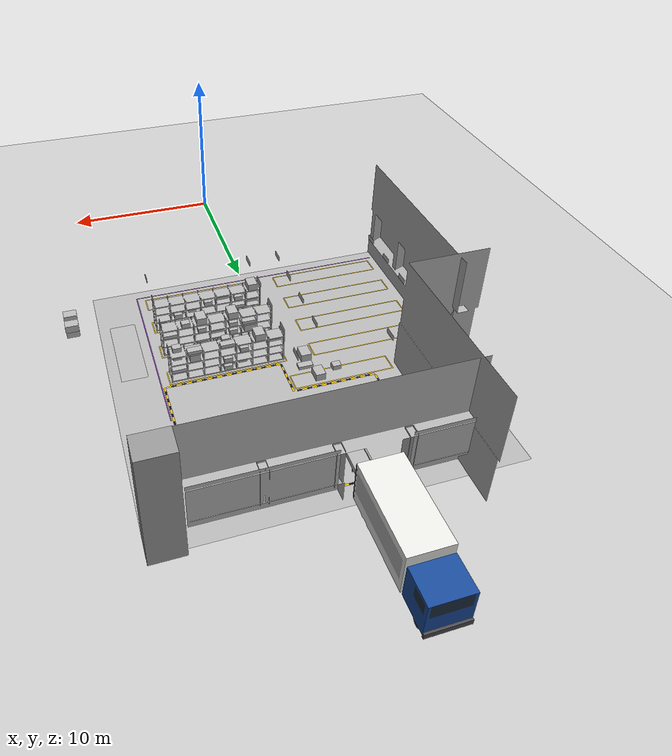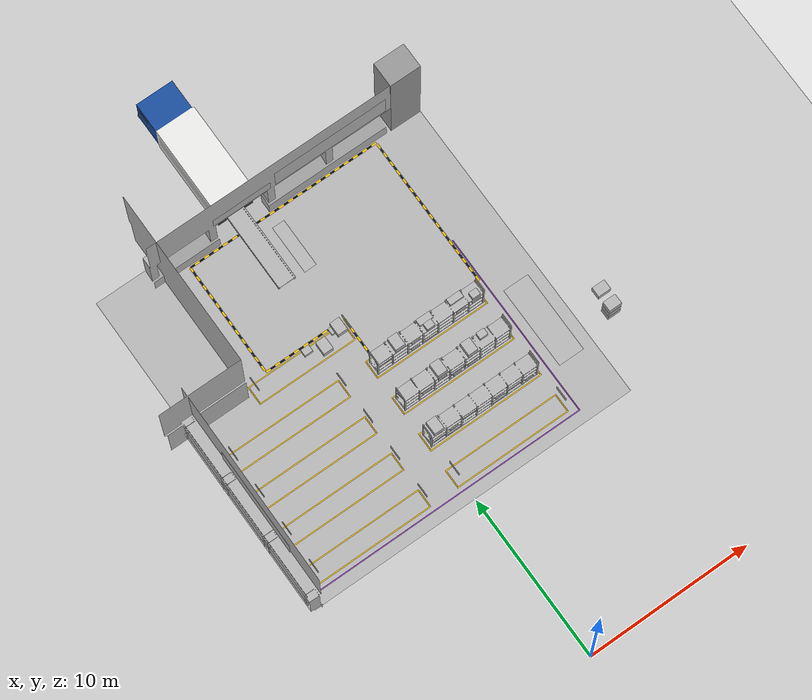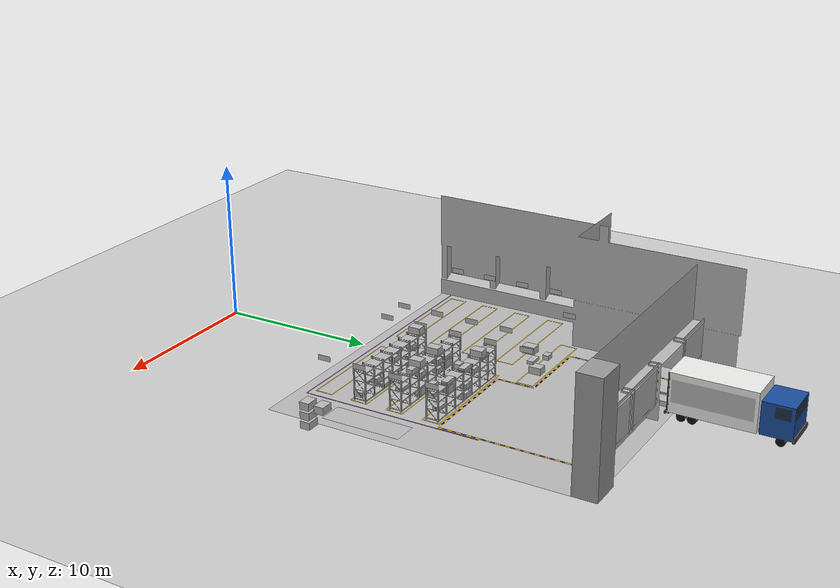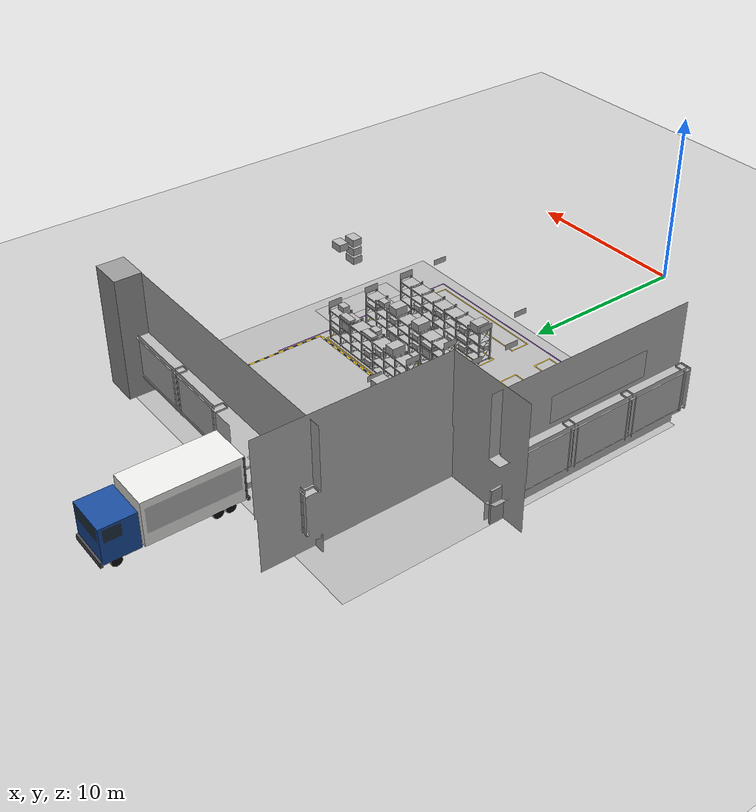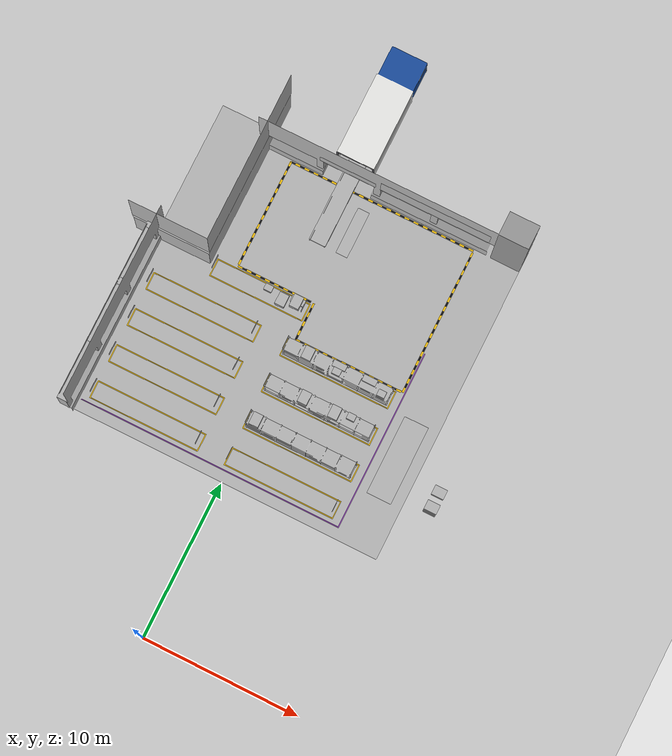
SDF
<sdf version="1.6">
 <world name="default">
  <model name="ground_plane">
   <static>1</static>
   <link name="link">
    <collision name="collision">
     <geometry><plane><normal>0 0 1</normal><size>100 100</size></plane></geometry>
     <surface><friction><ode><mu>100</mu><mu2>50</mu2></ode></friction></surface>
    </collision>
    <visual name="visual">
     <cast_shadows>0</cast_shadows>
     <geometry><plane><normal>0 0 1</normal><size>100 100</size></plane></geometry>
     <material>
      <script><uri>file://media/materials/scripts/gazebo.material</uri><name>Gazebo/Grey</name></script>
     </material>
    </visual>
   </link>
  </model>
  <model name="box_C_103">
   <pose>11.562 15.012 2.067 0 0 3.1416</pose>
   <link name="link">
    <inertial>
     <mass>8.0</mass>
     <inertia><ixx>0.37500</ixx><iyy>0.54060</iyy><izz>0.64560</izz><ixy>0</ixy><ixz>0</ixz><iyz>0</iyz></inertia>
    </inertial>
    <collision name="collision">
     <geometry><box><size>0.78 0.6 0.45</size></box></geometry>
     <surface><friction><ode><mu>1.0</mu><mu2>1.0</mu2></ode></friction></surface>
    </collision>
    <visual name="visual">
     <cast_shadows>0</cast_shadows>
     <geometry><box><size>0.78 0.6 0.45</size></box></geometry>
     <material>
      <script>
       <uri>model://labeled_boxes/materials/scripts</uri>
       <uri>model://labeled_boxes/materials/textures</uri>
       <name>LabeledBox/C-103</name>
      </script>
     </material>
    </visual>
   </link>
  </model>
  <model name="box_C_104">
   <pose>11.562 14.058 0.907 0 0 3.1416</pose>
   <link name="link">
    <inertial>
     <mass>8.0</mass>
     <inertia><ixx>0.37500</ixx><iyy>0.54060</iyy><izz>0.64560</izz><ixy>0</ixy><ixz>0</ixz><iyz>0</iyz></inertia>
    </inertial>
    <collision name="collision">
     <geometry><box><size>0.78 0.6 0.45</size></box></geometry>
     <surface><friction><ode><mu>1.0</mu><mu2>1.0</mu2></ode></friction></surface>
    </collision>
    <visual name="visual">
     <cast_shadows>0</cast_shadows>
     <geometry><box><size>0.78 0.6 0.45</size></box></geometry>
     <material>
      <script>
       <uri>model://labeled_boxes/materials/scripts</uri>
       <uri>model://labeled_boxes/materials/textures</uri>
       <name>LabeledBox/C-104</name>
      </script>
     </material>
    </visual>
   </link>
  </model>
  <model name="box_C_105">
   <pose>11.562 14.058 1.487 0 0 3.1416</pose>
   <link name="link">
    <inertial>
     <mass>8.0</mass>
     <inertia><ixx>0.37500</ixx><iyy>0.54060</iyy><izz>0.64560</izz><ixy>0</ixy><ixz>0</ixz><iyz>0</iyz></inertia>
    </inertial>
    <collision name="collision">
     <geometry><box><size>0.78 0.6 0.45</size></box></geometry>
     <surface><friction><ode><mu>1.0</mu><mu2>1.0</mu2></ode></friction></surface>
    </collision>
    <visual name="visual">
     <cast_shadows>0</cast_shadows>
     <geometry><box><size>0.78 0.6 0.45</size></box></geometry>
     <material>
      <script>
       <uri>model://labeled_boxes/materials/scripts</uri>
       <uri>model://labeled_boxes/materials/textures</uri>
       <name>LabeledBox/C-105</name>
      </script>
     </material>
    </visual>
   </link>
  </model>
  <model name="box_C_106">
   <pose>11.562 14.058 2.067 0 0 3.1416</pose>
   <link name="link">
    <inertial>
     <mass>8.0</mass>
     <inertia><ixx>0.37500</ixx><iyy>0.54060</iyy><izz>0.64560</izz><ixy>0</ixy><ixz>0</ixz><iyz>0</iyz></inertia>
    </inertial>
    <collision name="collision">
     <geometry><box><size>0.78 0.6 0.45</size></box></geometry>
     <surface><friction><ode><mu>1.0</mu><mu2>1.0</mu2></ode></friction></surface>
    </collision>
    <visual name="visual">
     <cast_shadows>0</cast_shadows>
     <geometry><box><size>0.78 0.6 0.45</size></box></geometry>
     <material>
      <script>
       <uri>model://labeled_boxes/materials/scripts</uri>
       <uri>model://labeled_boxes/materials/textures</uri>
       <name>LabeledBox/C-106</name>
      </script>
     </material>
    </visual>
   </link>
  </model>
  <include>
   <name>zone_D_layout</name>
   <uri>model://zone_d_layout</uri>
   <pose>-0.040107 20.155 0 0 0 -1.5708</pose>
  </include>
  <model name="box_D_006">
   <pose>-2.6568 21.46 0.832 0 0 -1.5708</pose>
   <link name="link">
    <inertial>
     <mass>2.0</mass>
     <inertia><ixx>0.05667</ixx><iyy>0.04167</iyy><izz>0.06833</izz><ixy>0</ixy><ixz>0</ixz><iyz>0</iyz></inertia>
    </inertial>
    <collision name="collision">
     <geometry><box><size>0.4 0.5 0.3</size></box></geometry>
     <surface><friction><ode><mu>1.0</mu><mu2>1.0</mu2></ode></friction></surface>
    </collision>
    <visual name="visual">
     <cast_shadows>0</cast_shadows>
     <geometry><box><size>0.4 0.5 0.3</size></box></geometry>
     <material>
      <script>
       <uri>model://labeled_boxes/materials/scripts</uri>
       <uri>model://labeled_boxes/materials/textures</uri>
       <name>LabeledBox/D-006</name>
      </script>
     </material>
    </visual>
   </link>
  </model>
  <model name="box_D_008">
   <pose>-1.6901 21.255 0.327 0 0 -1.5708</pose>
   <link name="link">
    <inertial>
     <mass>8.0</mass>
     <inertia><ixx>0.37500</ixx><iyy>0.54060</iyy><izz>0.64560</izz><ixy>0</ixy><ixz>0</ixz><iyz>0</iyz></inertia>
    </inertial>
    <collision name="collision">
     <geometry><box><size>0.78 0.6 0.45</size></box></geometry>
     <surface><friction><ode><mu>1.0</mu><mu2>1.0</mu2></ode></friction></surface>
    </collision>
    <visual name="visual">
     <cast_shadows>0</cast_shadows>
     <geometry><box><size>0.78 0.6 0.45</size></box></geometry>
     <material>
      <script>
       <uri>model://labeled_boxes/materials/scripts</uri>
       <uri>model://labeled_boxes/materials/textures</uri>
       <name>LabeledBox/D-008</name>
      </script>
     </material>
    </visual>
   </link>
  </model>
  <model name="box_D_009">
   <pose>-0.74094 21.46 1.362 0 0 -1.5708</pose>
   <link name="link">
    <inertial>
     <mass>4.0</mass>
     <inertia><ixx>0.25417</ixx><iyy>0.06667</iyy><izz>0.29417</izz><ixy>0</ixy><ixz>0</ixz><iyz>0</iyz></inertia>
    </inertial>
    <collision name="collision">
     <geometry><box><size>0.4 0.85 0.2</size></box></geometry>
     <surface><friction><ode><mu>1.0</mu><mu2>1.0</mu2></ode></friction></surface>
    </collision>
    <visual name="visual">
     <cast_shadows>0</cast_shadows>
     <geometry><box><size>0.4 0.85 0.2</size></box></geometry>
     <material>
      <script>
       <uri>model://labeled_boxes/materials/scripts</uri>
       <uri>model://labeled_boxes/materials/textures</uri>
       <name>LabeledBox/D-009</name>
      </script>
     </material>
    </visual>
   </link>
  </model>
  <model name="box_D_010">
   <pose>-0.74094 21.255 2.067 0 0 -1.5708</pose>
   <link name="link">
    <inertial>
     <mass>8.0</mass>
     <inertia><ixx>0.37500</ixx><iyy>0.54060</iyy><izz>0.64560</izz><ixy>0</ixy><ixz>0</ixz><iyz>0</iyz></inertia>
    </inertial>
    <collision name="collision">
     <geometry><box><size>0.78 0.6 0.45</size></box></geometry>
     <surface><friction><ode><mu>1.0</mu><mu2>1.0</mu2></ode></friction></surface>
    </collision>
    <visual name="visual">
     <cast_shadows>0</cast_shadows>
     <geometry><box><size>0.78 0.6 0.45</size></box></geometry>
     <material>
      <script>
       <uri>model://labeled_boxes/materials/scripts</uri>
       <uri>model://labeled_boxes/materials/textures</uri>
       <name>LabeledBox/D-010</name>
      </script>
     </material>
    </visual>
   </link>
  </model>
  <include>
   <name>rack_D2_1</name>
   <uri>model://warehouse_rack_4lvl_7bay</uri>
   <pose>3.1599 18.855 0 0 0 -1.5708</pose>
  </include>
  <model name="box_D_031">
   <pose>0.26311 18.65 1.362 0 0 -1.5708</pose>
   <link name="link">
    <inertial>
     <mass>4.0</mass>
     <inertia><ixx>0.25417</ixx><iyy>0.06667</iyy><izz>0.29417</izz><ixy>0</ixy><ixz>0</ixz><iyz>0</iyz></inertia>
    </inertial>
    <collision name="collision">
     <geometry><box><size>0.4 0.85 0.2</size></box></geometry>
     <surface><friction><ode><mu>1.0</mu><mu2>1.0</mu2></ode></friction></surface>
    </collision>
    <visual name="visual">
     <cast_shadows>0</cast_shadows>
     <geometry><box><size>0.4 0.85 0.2</size></box></geometry>
     <material>
      <script>
       <uri>model://labeled_boxes/materials/scripts</uri>
       <uri>model://labeled_boxes/materials/textures</uri>
       <name>LabeledBox/D-031</name>
      </script>
     </material>
    </visual>
   </link>
  </model>
  <model name="box_D_032">
   <pose>1.217 18.855 2.067 0 0 -1.5708</pose>
   <link name="link">
    <inertial>
     <mass>8.0</mass>
     <inertia><ixx>0.37500</ixx><iyy>0.54060</iyy><izz>0.64560</izz><ixy>0</ixy><ixz>0</ixz><iyz>0</iyz></inertia>
    </inertial>
    <collision name="collision">
     <geometry><box><size>0.78 0.6 0.45</size></box></geometry>
     <surface><friction><ode><mu>1.0</mu><mu2>1.0</mu2></ode></friction></surface>
    </collision>
    <visual name="visual">
     <cast_shadows>0</cast_shadows>
     <geometry><box><size>0.78 0.6 0.45</size></box></geometry>
     <material>
      <script>
       <uri>model://labeled_boxes/materials/scripts</uri>
       <uri>model://labeled_boxes/materials/textures</uri>
       <name>LabeledBox/D-032</name>
      </script>
     </material>
    </visual>
   </link>
  </model>
  <model name="box_D_033">
   <pose>2.1885 18.65 0.252 0 0 -1.5708</pose>
   <link name="link">
    <inertial>
     <mass>2.0</mass>
     <inertia><ixx>0.05667</ixx><iyy>0.04167</iyy><izz>0.06833</izz><ixy>0</ixy><ixz>0</ixz><iyz>0</iyz></inertia>
    </inertial>
    <collision name="collision">
     <geometry><box><size>0.4 0.5 0.3</size></box></geometry>
     <surface><friction><ode><mu>1.0</mu><mu2>1.0</mu2></ode></friction></surface>
    </collision>
    <visual name="visual">
     <cast_shadows>0</cast_shadows>
     <geometry><box><size>0.4 0.5 0.3</size></box></geometry>
     <material>
      <script>
       <uri>model://labeled_boxes/materials/scripts</uri>
       <uri>model://labeled_boxes/materials/textures</uri>
       <name>LabeledBox/D-033</name>
      </script>
     </material>
    </visual>
   </link>
  </model>
  <model name="box_D_034">
   <pose>2.1885 19.06 1.412 0 0 -1.5708</pose>
   <link name="link">
    <inertial>
     <mass>2.0</mass>
     <inertia><ixx>0.05667</ixx><iyy>0.04167</iyy><izz>0.06833</izz><ixy>0</ixy><ixz>0</ixz><iyz>0</iyz></inertia>
    </inertial>
    <collision name="collision">
     <geometry><box><size>0.4 0.5 0.3</size></box></geometry>
     <surface><friction><ode><mu>1.0</mu><mu2>1.0</mu2></ode></friction></surface>
    </collision>
    <visual name="visual">
     <cast_shadows>0</cast_shadows>
     <geometry><box><size>0.4 0.5 0.3</size></box></geometry>
     <material>
      <script>
       <uri>model://labeled_boxes/materials/scripts</uri>
       <uri>model://labeled_boxes/materials/textures</uri>
       <name>LabeledBox/D-034</name>
      </script>
     </material>
    </visual>
   </link>
  </model>
  <model name="box_D_035">
   <pose>2.1885 18.65 1.412 0 0 -1.5708</pose>
   <link name="link">
    <inertial>
     <mass>2.0</mass>
     <inertia><ixx>0.05667</ixx><iyy>0.04167</iyy><izz>0.06833</izz><ixy>0</ixy><ixz>0</ixz><iyz>0</iyz></inertia>
    </inertial>
    <collision name="collision">
     <geometry><box><size>0.4 0.5 0.3</size></box></geometry>
     <surface><friction><ode><mu>1.0</mu><mu2>1.0</mu2></ode></friction></surface>
    </collision>
    <visual name="visual">
     <cast_shadows>0</cast_shadows>
     <geometry><box><size>0.4 0.5 0.3</size></box></geometry>
     <material>
      <script>
       <uri>model://labeled_boxes/materials/scripts</uri>
       <uri>model://labeled_boxes/materials/textures</uri>
       <name>LabeledBox/D-035</name>
      </script>
     </material>
    </visual>
   </link>
  </model>
  <model name="box_D_036">
   <pose>3.1599 19.06 0.252 0 0 -1.5708</pose>
   <link name="link">
    <inertial>
     <mass>2.0</mass>
     <inertia><ixx>0.05667</ixx><iyy>0.04167</iyy><izz>0.06833</izz><ixy>0</ixy><ixz>0</ixz><iyz>0</iyz></inertia>
    </inertial>
    <collision name="collision">
     <geometry><box><size>0.4 0.5 0.3</size></box></geometry>
     <surface><friction><ode><mu>1.0</mu><mu2>1.0</mu2></ode></friction></surface>
    </collision>
    <visual name="visual">
     <cast_shadows>0</cast_shadows>
     <geometry><box><size>0.4 0.5 0.3</size></box></geometry>
     <material>
      <script>
       <uri>model://labeled_boxes/materials/scripts</uri>
       <uri>model://labeled_boxes/materials/textures</uri>
       <name>LabeledBox/D-036</name>
      </script>
     </material>
    </visual>
   </link>
  </model>
  <model name="box_D_037">
   <pose>3.1599 18.65 0.202 0 0 -1.5708</pose>
   <link name="link">
    <inertial>
     <mass>4.0</mass>
     <inertia><ixx>0.25417</ixx><iyy>0.06667</iyy><izz>0.29417</izz><ixy>0</ixy><ixz>0</ixz><iyz>0</iyz></inertia>
    </inertial>
    <collision name="collision">
     <geometry><box><size>0.4 0.85 0.2</size></box></geometry>
     <surface><friction><ode><mu>1.0</mu><mu2>1.0</mu2></ode></friction></surface>
    </collision>
    <visual name="visual">
     <cast_shadows>0</cast_shadows>
     <geometry><box><size>0.4 0.85 0.2</size></box></geometry>
     <material>
      <script>
       <uri>model://labeled_boxes/materials/scripts</uri>
       <uri>model://labeled_boxes/materials/textures</uri>
       <name>LabeledBox/D-037</name>
      </script>
     </material>
    </visual>
   </link>
  </model>
  <model name="box_D_038">
   <pose>3.1599 19.06 0.832 0 0 -1.5708</pose>
   <link name="link">
    <inertial>
     <mass>2.0</mass>
     <inertia><ixx>0.05667</ixx><iyy>0.04167</iyy><izz>0.06833</izz><ixy>0</ixy><ixz>0</ixz><iyz>0</iyz></inertia>
    </inertial>
    <collision name="collision">
     <geometry><box><size>0.4 0.5 0.3</size></box></geometry>
     <surface><friction><ode><mu>1.0</mu><mu2>1.0</mu2></ode></friction></surface>
    </collision>
    <visual name="visual">
     <cast_shadows>0</cast_shadows>
     <geometry><box><size>0.4 0.5 0.3</size></box></geometry>
     <material>
      <script>
       <uri>model://labeled_boxes/materials/scripts</uri>
       <uri>model://labeled_boxes/materials/textures</uri>
       <name>LabeledBox/D-038</name>
      </script>
     </material>
    </visual>
   </link>
  </model>
  <model name="box_D_039">
   <pose>3.1599 19.06 1.942 0 0 -1.5708</pose>
   <link name="link">
    <inertial>
     <mass>4.0</mass>
     <inertia><ixx>0.25417</ixx><iyy>0.06667</iyy><izz>0.29417</izz><ixy>0</ixy><ixz>0</ixz><iyz>0</iyz></inertia>
    </inertial>
    <collision name="collision">
     <geometry><box><size>0.4 0.85 0.2</size></box></geometry>
     <surface><friction><ode><mu>1.0</mu><mu2>1.0</mu2></ode></friction></surface>
    </collision>
    <visual name="visual">
     <cast_shadows>0</cast_shadows>
     <geometry><box><size>0.4 0.85 0.2</size></box></geometry>
     <material>
      <script>
       <uri>model://labeled_boxes/materials/scripts</uri>
       <uri>model://labeled_boxes/materials/textures</uri>
       <name>LabeledBox/D-039</name>
      </script>
     </material>
    </visual>
   </link>
  </model>
  <model name="box_D_040">
   <pose>3.1599 18.65 1.992 0 0 -1.5708</pose>
   <link name="link">
    <inertial>
     <mass>2.0</mass>
     <inertia><ixx>0.05667</ixx><iyy>0.04167</iyy><izz>0.06833</izz><ixy>0</ixy><ixz>0</ixz><iyz>0</iyz></inertia>
    </inertial>
    <collision name="collision">
     <geometry><box><size>0.4 0.5 0.3</size></box></geometry>
     <surface><friction><ode><mu>1.0</mu><mu2>1.0</mu2></ode></friction></surface>
    </collision>
    <visual name="visual">
     <cast_shadows>0</cast_shadows>
     <geometry><box><size>0.4 0.5 0.3</size></box></geometry>
     <material>
      <script>
       <uri>model://labeled_boxes/materials/scripts</uri>
       <uri>model://labeled_boxes/materials/textures</uri>
       <name>LabeledBox/D-040</name>
      </script>
     </material>
    </visual>
   </link>
  </model>
  <model name="box_D_041">
   <pose>5.1028 18.855 1.487 0 0 -1.5708</pose>
   <link name="link">
    <inertial>
     <mass>8.0</mass>
     <inertia><ixx>0.37500</ixx><iyy>0.54060</iyy><izz>0.64560</izz><ixy>0</ixy><ixz>0</ixz><iyz>0</iyz></inertia>
    </inertial>
    <collision name="collision">
     <geometry><box><size>0.78 0.6 0.45</size></box></geometry>
     <surface><friction><ode><mu>1.0</mu><mu2>1.0</mu2></ode></friction></surface>
    </collision>
    <visual name="visual">
     <cast_shadows>0</cast_shadows>
     <geometry><box><size>0.78 0.6 0.45</size></box></geometry>
     <material>
      <script>
       <uri>model://labeled_boxes/materials/scripts</uri>
       <uri>model://labeled_boxes/materials/textures</uri>
       <name>LabeledBox/D-041</name>
      </script>
     </material>
    </visual>
   </link>
  </model>
  <model name="box_D_042">
   <pose>5.1028 19.06 1.942 0 0 -1.5708</pose>
   <link name="link">
    <inertial>
     <mass>4.0</mass>
     <inertia><ixx>0.25417</ixx><iyy>0.06667</iyy><izz>0.29417</izz><ixy>0</ixy><ixz>0</ixz><iyz>0</iyz></inertia>
    </inertial>
    <collision name="collision">
     <geometry><box><size>0.4 0.85 0.2</size></box></geometry>
     <surface><friction><ode><mu>1.0</mu><mu2>1.0</mu2></ode></friction></surface>
    </collision>
    <visual name="visual">
     <cast_shadows>0</cast_shadows>
     <geometry><box><size>0.4 0.85 0.2</size></box></geometry>
     <material>
      <script>
       <uri>model://labeled_boxes/materials/scripts</uri>
       <uri>model://labeled_boxes/materials/textures</uri>
       <name>LabeledBox/D-042</name>
      </script>
     </material>
    </visual>
   </link>
  </model>
  <model name="box_D_043">
   <pose>6.0567 19.06 0.782 0 0 -1.5708</pose>
   <link name="link">
    <inertial>
     <mass>4.0</mass>
     <inertia><ixx>0.25417</ixx><iyy>0.06667</iyy><izz>0.29417</izz><ixy>0</ixy><ixz>0</ixz><iyz>0</iyz></inertia>
    </inertial>
    <collision name="collision">
     <geometry><box><size>0.4 0.85 0.2</size></box></geometry>
     <surface><friction><ode><mu>1.0</mu><mu2>1.0</mu2></ode></friction></surface>
    </collision>
    <visual name="visual">
     <cast_shadows>0</cast_shadows>
     <geometry><box><size>0.4 0.85 0.2</size></box></geometry>
     <material>
      <script>
       <uri>model://labeled_boxes/materials/scripts</uri>
       <uri>model://labeled_boxes/materials/textures</uri>
       <name>LabeledBox/D-043</name>
      </script>
     </material>
    </visual>
   </link>
  </model>
  <model name="box_D_044">
   <pose>6.0567 18.65 1.412 0 0 -1.5708</pose>
   <link name="link">
    <inertial>
     <mass>2.0</mass>
     <inertia><ixx>0.05667</ixx><iyy>0.04167</iyy><izz>0.06833</izz><ixy>0</ixy><ixz>0</ixz><iyz>0</iyz></inertia>
    </inertial>
    <collision name="collision">
     <geometry><box><size>0.4 0.5 0.3</size></box></geometry>
     <surface><friction><ode><mu>1.0</mu><mu2>1.0</mu2></ode></friction></surface>
    </collision>
    <visual name="visual">
     <cast_shadows>0</cast_shadows>
     <geometry><box><size>0.4 0.5 0.3</size></box></geometry>
     <material>
      <script>
       <uri>model://labeled_boxes/materials/scripts</uri>
       <uri>model://labeled_boxes/materials/textures</uri>
       <name>LabeledBox/D-044</name>
      </script>
     </material>
    </visual>
   </link>
  </model>
  <model name="box_D_045">
   <pose>6.0567 18.65 1.992 0 0 -1.5708</pose>
   <link name="link">
    <inertial>
     <mass>2.0</mass>
     <inertia><ixx>0.05667</ixx><iyy>0.04167</iyy><izz>0.06833</izz><ixy>0</ixy><ixz>0</ixz><iyz>0</iyz></inertia>
    </inertial>
    <collision name="collision">
     <geometry><box><size>0.4 0.5 0.3</size></box></geometry>
     <surface><friction><ode><mu>1.0</mu><mu2>1.0</mu2></ode></friction></surface>
    </collision>
    <visual name="visual">
     <cast_shadows>0</cast_shadows>
     <geometry><box><size>0.4 0.5 0.3</size></box></geometry>
     <material>
      <script>
       <uri>model://labeled_boxes/materials/scripts</uri>
       <uri>model://labeled_boxes/materials/textures</uri>
       <name>LabeledBox/D-045</name>
      </script>
     </material>
    </visual>
   </link>
  </model>
  <include>
   <name>rack_D3_1</name>
   <uri>model://warehouse_rack_4lvl_7bay</uri>
   <pose>3.1599 16.455 0 0 0 -1.5708</pose>
  </include>
  <model name="box_D_054">
   <pose>1.217 16.455 0.907 0 0 -1.5708</pose>
   <link name="link">
    <inertial>
     <mass>8.0</mass>
     <inertia><ixx>0.37500</ixx><iyy>0.54060</iyy><izz>0.64560</izz><ixy>0</ixy><ixz>0</ixz><iyz>0</iyz></inertia>
    </inertial>
    <collision name="collision">
     <geometry><box><size>0.78 0.6 0.45</size></box></geometry>
     <surface><friction><ode><mu>1.0</mu><mu2>1.0</mu2></ode></friction></surface>
    </collision>
    <visual name="visual">
     <cast_shadows>0</cast_shadows>
     <geometry><box><size>0.78 0.6 0.45</size></box></geometry>
     <material>
      <script>
       <uri>model://labeled_boxes/materials/scripts</uri>
       <uri>model://labeled_boxes/materials/textures</uri>
       <name>LabeledBox/D-054</name>
      </script>
     </material>
    </visual>
   </link>
  </model>
  <model name="box_D_055">
   <pose>1.217 16.66 1.362 0 0 -1.5708</pose>
   <link name="link">
    <inertial>
     <mass>4.0</mass>
     <inertia><ixx>0.25417</ixx><iyy>0.06667</iyy><izz>0.29417</izz><ixy>0</ixy><ixz>0</ixz><iyz>0</iyz></inertia>
    </inertial>
    <collision name="collision">
     <geometry><box><size>0.4 0.85 0.2</size></box></geometry>
     <surface><friction><ode><mu>1.0</mu><mu2>1.0</mu2></ode></friction></surface>
    </collision>
    <visual name="visual">
     <cast_shadows>0</cast_shadows>
     <geometry><box><size>0.4 0.85 0.2</size></box></geometry>
     <material>
      <script>
       <uri>model://labeled_boxes/materials/scripts</uri>
       <uri>model://labeled_boxes/materials/textures</uri>
       <name>LabeledBox/D-055</name>
      </script>
     </material>
    </visual>
   </link>
  </model>
  <model name="box_D_056">
   <pose>2.1885 16.66 0.832 0 0 -1.5708</pose>
   <link name="link">
    <inertial>
     <mass>2.0</mass>
     <inertia><ixx>0.05667</ixx><iyy>0.04167</iyy><izz>0.06833</izz><ixy>0</ixy><ixz>0</ixz><iyz>0</iyz></inertia>
    </inertial>
    <collision name="collision">
     <geometry><box><size>0.4 0.5 0.3</size></box></geometry>
     <surface><friction><ode><mu>1.0</mu><mu2>1.0</mu2></ode></friction></surface>
    </collision>
    <visual name="visual">
     <cast_shadows>0</cast_shadows>
     <geometry><box><size>0.4 0.5 0.3</size></box></geometry>
     <material>
      <script>
       <uri>model://labeled_boxes/materials/scripts</uri>
       <uri>model://labeled_boxes/materials/textures</uri>
       <name>LabeledBox/D-056</name>
      </script>
     </material>
    </visual>
   </link>
  </model>
  <model name="box_D_057">
   <pose>2.1885 16.66 1.412 0 0 -1.5708</pose>
   <link name="link">
    <inertial>
     <mass>2.0</mass>
     <inertia><ixx>0.05667</ixx><iyy>0.04167</iyy><izz>0.06833</izz><ixy>0</ixy><ixz>0</ixz><iyz>0</iyz></inertia>
    </inertial>
    <collision name="collision">
     <geometry><box><size>0.4 0.5 0.3</size></box></geometry>
     <surface><friction><ode><mu>1.0</mu><mu2>1.0</mu2></ode></friction></surface>
    </collision>
    <visual name="visual">
     <cast_shadows>0</cast_shadows>
     <geometry><box><size>0.4 0.5 0.3</size></box></geometry>
     <material>
      <script>
       <uri>model://labeled_boxes/materials/scripts</uri>
       <uri>model://labeled_boxes/materials/textures</uri>
       <name>LabeledBox/D-057</name>
      </script>
     </material>
    </visual>
   </link>
  </model>
  <model name="box_D_058">
   <pose>2.1885 16.25 1.412 0 0 -1.5708</pose>
   <link name="link">
    <inertial>
     <mass>2.0</mass>
     <inertia><ixx>0.05667</ixx><iyy>0.04167</iyy><izz>0.06833</izz><ixy>0</ixy><ixz>0</ixz><iyz>0</iyz></inertia>
    </inertial>
    <collision name="collision">
     <geometry><box><size>0.4 0.5 0.3</size></box></geometry>
     <surface><friction><ode><mu>1.0</mu><mu2>1.0</mu2></ode></friction></surface>
    </collision>
    <visual name="visual">
     <cast_shadows>0</cast_shadows>
     <geometry><box><size>0.4 0.5 0.3</size></box></geometry>
     <material>
      <script>
       <uri>model://labeled_boxes/materials/scripts</uri>
       <uri>model://labeled_boxes/materials/textures</uri>
       <name>LabeledBox/D-058</name>
      </script>
     </material>
    </visual>
   </link>
  </model>
  <model name="box_D_059">
   <pose>2.1885 16.455 2.067 0 0 -1.5708</pose>
   <link name="link">
    <inertial>
     <mass>8.0</mass>
     <inertia><ixx>0.37500</ixx><iyy>0.54060</iyy><izz>0.64560</izz><ixy>0</ixy><ixz>0</ixz><iyz>0</iyz></inertia>
    </inertial>
    <collision name="collision">
     <geometry><box><size>0.78 0.6 0.45</size></box></geometry>
     <surface><friction><ode><mu>1.0</mu><mu2>1.0</mu2></ode></friction></surface>
    </collision>
    <visual name="visual">
     <cast_shadows>0</cast_shadows>
     <geometry><box><size>0.78 0.6 0.45</size></box></geometry>
     <material>
      <script>
       <uri>model://labeled_boxes/materials/scripts</uri>
       <uri>model://labeled_boxes/materials/textures</uri>
       <name>LabeledBox/D-059</name>
      </script>
     </material>
    </visual>
   </link>
  </model>
  <model name="box_D_060">
   <pose>3.1599 16.25 0.252 0 0 -1.5708</pose>
   <link name="link">
    <inertial>
     <mass>2.0</mass>
     <inertia><ixx>0.05667</ixx><iyy>0.04167</iyy><izz>0.06833</izz><ixy>0</ixy><ixz>0</ixz><iyz>0</iyz></inertia>
    </inertial>
    <collision name="collision">
     <geometry><box><size>0.4 0.5 0.3</size></box></geometry>
     <surface><friction><ode><mu>1.0</mu><mu2>1.0</mu2></ode></friction></surface>
    </collision>
    <visual name="visual">
     <cast_shadows>0</cast_shadows>
     <geometry><box><size>0.4 0.5 0.3</size></box></geometry>
     <material>
      <script>
       <uri>model://labeled_boxes/materials/scripts</uri>
       <uri>model://labeled_boxes/materials/textures</uri>
       <name>LabeledBox/D-060</name>
      </script>
     </material>
    </visual>
   </link>
  </model>
  <model name="box_D_061">
   <pose>3.1599 16.25 0.782 0 0 -1.5708</pose>
   <link name="link">
    <inertial>
     <mass>4.0</mass>
     <inertia><ixx>0.25417</ixx><iyy>0.06667</iyy><izz>0.29417</izz><ixy>0</ixy><ixz>0</ixz><iyz>0</iyz></inertia>
    </inertial>
    <collision name="collision">
     <geometry><box><size>0.4 0.85 0.2</size></box></geometry>
     <surface><friction><ode><mu>1.0</mu><mu2>1.0</mu2></ode></friction></surface>
    </collision>
    <visual name="visual">
     <cast_shadows>0</cast_shadows>
     <geometry><box><size>0.4 0.85 0.2</size></box></geometry>
     <material>
      <script>
       <uri>model://labeled_boxes/materials/scripts</uri>
       <uri>model://labeled_boxes/materials/textures</uri>
       <name>LabeledBox/D-061</name>
      </script>
     </material>
    </visual>
   </link>
  </model>
  <model name="box_D_062">
   <pose>4.1313 16.455 0.327 0 0 -1.5708</pose>
   <link name="link">
    <inertial>
     <mass>8.0</mass>
     <inertia><ixx>0.37500</ixx><iyy>0.54060</iyy><izz>0.64560</izz><ixy>0</ixy><ixz>0</ixz><iyz>0</iyz></inertia>
    </inertial>
    <collision name="collision">
     <geometry><box><size>0.78 0.6 0.45</size></box></geometry>
     <surface><friction><ode><mu>1.0</mu><mu2>1.0</mu2></ode></friction></surface>
    </collision>
    <visual name="visual">
     <cast_shadows>0</cast_shadows>
     <geometry><box><size>0.78 0.6 0.45</size></box></geometry>
     <material>
      <script>
       <uri>model://labeled_boxes/materials/scripts</uri>
       <uri>model://labeled_boxes/materials/textures</uri>
       <name>LabeledBox/D-062</name>
      </script>
     </material>
    </visual>
   </link>
  </model>
  <model name="box_D_063">
   <pose>4.1313 16.66 1.412 0 0 -1.5708</pose>
   <link name="link">
    <inertial>
     <mass>2.0</mass>
     <inertia><ixx>0.05667</ixx><iyy>0.04167</iyy><izz>0.06833</izz><ixy>0</ixy><ixz>0</ixz><iyz>0</iyz></inertia>
    </inertial>
    <collision name="collision">
     <geometry><box><size>0.4 0.5 0.3</size></box></geometry>
     <surface><friction><ode><mu>1.0</mu><mu2>1.0</mu2></ode></friction></surface>
    </collision>
    <visual name="visual">
     <cast_shadows>0</cast_shadows>
     <geometry><box><size>0.4 0.5 0.3</size></box></geometry>
     <material>
      <script>
       <uri>model://labeled_boxes/materials/scripts</uri>
       <uri>model://labeled_boxes/materials/textures</uri>
       <name>LabeledBox/D-063</name>
      </script>
     </material>
    </visual>
   </link>
  </model>
  <model name="box_D_064">
   <pose>4.1313 16.455 2.067 0 0 -1.5708</pose>
   <link name="link">
    <inertial>
     <mass>8.0</mass>
     <inertia><ixx>0.37500</ixx><iyy>0.54060</iyy><izz>0.64560</izz><ixy>0</ixy><ixz>0</ixz><iyz>0</iyz></inertia>
    </inertial>
    <collision name="collision">
     <geometry><box><size>0.78 0.6 0.45</size></box></geometry>
     <surface><friction><ode><mu>1.0</mu><mu2>1.0</mu2></ode></friction></surface>
    </collision>
    <visual name="visual">
     <cast_shadows>0</cast_shadows>
     <geometry><box><size>0.78 0.6 0.45</size></box></geometry>
     <material>
      <script>
       <uri>model://labeled_boxes/materials/scripts</uri>
       <uri>model://labeled_boxes/materials/textures</uri>
       <name>LabeledBox/D-064</name>
      </script>
     </material>
    </visual>
   </link>
  </model>
  <model name="box_D_065">
   <pose>5.1028 16.66 1.992 0 0 -1.5708</pose>
   <link name="link">
    <inertial>
     <mass>2.0</mass>
     <inertia><ixx>0.05667</ixx><iyy>0.04167</iyy><izz>0.06833</izz><ixy>0</ixy><ixz>0</ixz><iyz>0</iyz></inertia>
    </inertial>
    <collision name="collision">
     <geometry><box><size>0.4 0.5 0.3</size></box></geometry>
     <surface><friction><ode><mu>1.0</mu><mu2>1.0</mu2></ode></friction></surface>
    </collision>
    <visual name="visual">
     <cast_shadows>0</cast_shadows>
     <geometry><box><size>0.4 0.5 0.3</size></box></geometry>
     <material>
      <script>
       <uri>model://labeled_boxes/materials/scripts</uri>
       <uri>model://labeled_boxes/materials/textures</uri>
       <name>LabeledBox/D-065</name>
      </script>
     </material>
    </visual>
   </link>
  </model>
  <model name="box_D_066">
   <pose>6.0567 16.66 1.362 0 0 -1.5708</pose>
   <link name="link">
    <inertial>
     <mass>4.0</mass>
     <inertia><ixx>0.25417</ixx><iyy>0.06667</iyy><izz>0.29417</izz><ixy>0</ixy><ixz>0</ixz><iyz>0</iyz></inertia>
    </inertial>
    <collision name="collision">
     <geometry><box><size>0.4 0.85 0.2</size></box></geometry>
     <surface><friction><ode><mu>1.0</mu><mu2>1.0</mu2></ode></friction></surface>
    </collision>
    <visual name="visual">
     <cast_shadows>0</cast_shadows>
     <geometry><box><size>0.4 0.85 0.2</size></box></geometry>
     <material>
      <script>
       <uri>model://labeled_boxes/materials/scripts</uri>
       <uri>model://labeled_boxes/materials/textures</uri>
       <name>LabeledBox/D-066</name>
      </script>
     </material>
    </visual>
   </link>
  </model>
  <include>
   <name>rack_D4_1</name>
   <uri>model://warehouse_rack_4lvl_7bay</uri>
   <pose>3.1599 14.055 0 0 0 -1.5708</pose>
  </include>
  <model name="box_D_085">
   <pose>0.26311 13.85 0.782 0 0 -1.5708</pose>
   <link name="link">
    <inertial>
     <mass>4.0</mass>
     <inertia><ixx>0.25417</ixx><iyy>0.06667</iyy><izz>0.29417</izz><ixy>0</ixy><ixz>0</ixz><iyz>0</iyz></inertia>
    </inertial>
    <collision name="collision">
     <geometry><box><size>0.4 0.85 0.2</size></box></geometry>
     <surface><friction><ode><mu>1.0</mu><mu2>1.0</mu2></ode></friction></surface>
    </collision>
    <visual name="visual">
     <cast_shadows>0</cast_shadows>
     <geometry><box><size>0.4 0.85 0.2</size></box></geometry>
     <material>
      <script>
       <uri>model://labeled_boxes/materials/scripts</uri>
       <uri>model://labeled_boxes/materials/textures</uri>
       <name>LabeledBox/D-085</name>
      </script>
     </material>
    </visual>
   </link>
  </model>
  <model name="box_D_086">
   <pose>0.26311 14.055 2.067 0 0 -1.5708</pose>
   <link name="link">
    <inertial>
     <mass>8.0</mass>
     <inertia><ixx>0.37500</ixx><iyy>0.54060</iyy><izz>0.64560</izz><ixy>0</ixy><ixz>0</ixz><iyz>0</iyz></inertia>
    </inertial>
    <collision name="collision">
     <geometry><box><size>0.78 0.6 0.45</size></box></geometry>
     <surface><friction><ode><mu>1.0</mu><mu2>1.0</mu2></ode></friction></surface>
    </collision>
    <visual name="visual">
     <cast_shadows>0</cast_shadows>
     <geometry><box><size>0.78 0.6 0.45</size></box></geometry>
     <material>
      <script>
       <uri>model://labeled_boxes/materials/scripts</uri>
       <uri>model://labeled_boxes/materials/textures</uri>
       <name>LabeledBox/D-086</name>
      </script>
     </material>
    </visual>
   </link>
  </model>
  <model name="box_D_087">
   <pose>1.217 14.26 0.252 0 0 -1.5708</pose>
   <link name="link">
    <inertial>
     <mass>2.0</mass>
     <inertia><ixx>0.05667</ixx><iyy>0.04167</iyy><izz>0.06833</izz><ixy>0</ixy><ixz>0</ixz><iyz>0</iyz></inertia>
    </inertial>
    <collision name="collision">
     <geometry><box><size>0.4 0.5 0.3</size></box></geometry>
     <surface><friction><ode><mu>1.0</mu><mu2>1.0</mu2></ode></friction></surface>
    </collision>
    <visual name="visual">
     <cast_shadows>0</cast_shadows>
     <geometry><box><size>0.4 0.5 0.3</size></box></geometry>
     <material>
      <script>
       <uri>model://labeled_boxes/materials/scripts</uri>
       <uri>model://labeled_boxes/materials/textures</uri>
       <name>LabeledBox/D-087</name>
      </script>
     </material>
    </visual>
   </link>
  </model>
  <model name="box_D_088">
   <pose>1.217 13.85 0.202 0 0 -1.5708</pose>
   <link name="link">
    <inertial>
     <mass>4.0</mass>
     <inertia><ixx>0.25417</ixx><iyy>0.06667</iyy><izz>0.29417</izz><ixy>0</ixy><ixz>0</ixz><iyz>0</iyz></inertia>
    </inertial>
    <collision name="collision">
     <geometry><box><size>0.4 0.85 0.2</size></box></geometry>
     <surface><friction><ode><mu>1.0</mu><mu2>1.0</mu2></ode></friction></surface>
    </collision>
    <visual name="visual">
     <cast_shadows>0</cast_shadows>
     <geometry><box><size>0.4 0.85 0.2</size></box></geometry>
     <material>
      <script>
       <uri>model://labeled_boxes/materials/scripts</uri>
       <uri>model://labeled_boxes/materials/textures</uri>
       <name>LabeledBox/D-088</name>
      </script>
     </material>
    </visual>
   </link>
  </model>
  <model name="box_D_089">
   <pose>1.217 14.26 0.782 0 0 -1.5708</pose>
   <link name="link">
    <inertial>
     <mass>4.0</mass>
     <inertia><ixx>0.25417</ixx><iyy>0.06667</iyy><izz>0.29417</izz><ixy>0</ixy><ixz>0</ixz><iyz>0</iyz></inertia>
    </inertial>
    <collision name="collision">
     <geometry><box><size>0.4 0.85 0.2</size></box></geometry>
     <surface><friction><ode><mu>1.0</mu><mu2>1.0</mu2></ode></friction></surface>
    </collision>
    <visual name="visual">
     <cast_shadows>0</cast_shadows>
     <geometry><box><size>0.4 0.85 0.2</size></box></geometry>
     <material>
      <script>
       <uri>model://labeled_boxes/materials/scripts</uri>
       <uri>model://labeled_boxes/materials/textures</uri>
       <name>LabeledBox/D-089</name>
      </script>
     </material>
    </visual>
   </link>
  </model>
  <model name="box_D_090">
   <pose>1.217 13.85 0.832 0 0 -1.5708</pose>
   <link name="link">
    <inertial>
     <mass>2.0</mass>
     <inertia><ixx>0.05667</ixx><iyy>0.04167</iyy><izz>0.06833</izz><ixy>0</ixy><ixz>0</ixz><iyz>0</iyz></inertia>
    </inertial>
    <collision name="collision">
     <geometry><box><size>0.4 0.5 0.3</size></box></geometry>
     <surface><friction><ode><mu>1.0</mu><mu2>1.0</mu2></ode></friction></surface>
    </collision>
    <visual name="visual">
     <cast_shadows>0</cast_shadows>
     <geometry><box><size>0.4 0.5 0.3</size></box></geometry>
     <material>
      <script>
       <uri>model://labeled_boxes/materials/scripts</uri>
       <uri>model://labeled_boxes/materials/textures</uri>
       <name>LabeledBox/D-090</name>
      </script>
     </material>
    </visual>
   </link>
  </model>
  <model name="box_D_091">
   <pose>1.217 14.26 1.412 0 0 -1.5708</pose>
   <link name="link">
    <inertial>
     <mass>2.0</mass>
     <inertia><ixx>0.05667</ixx><iyy>0.04167</iyy><izz>0.06833</izz><ixy>0</ixy><ixz>0</ixz><iyz>0</iyz></inertia>
    </inertial>
    <collision name="collision">
     <geometry><box><size>0.4 0.5 0.3</size></box></geometry>
     <surface><friction><ode><mu>1.0</mu><mu2>1.0</mu2></ode></friction></surface>
    </collision>
    <visual name="visual">
     <cast_shadows>0</cast_shadows>
     <geometry><box><size>0.4 0.5 0.3</size></box></geometry>
     <material>
      <script>
       <uri>model://labeled_boxes/materials/scripts</uri>
       <uri>model://labeled_boxes/materials/textures</uri>
       <name>LabeledBox/D-091</name>
      </script>
     </material>
    </visual>
   </link>
  </model>
  <model name="box_D_092">
   <pose>2.1885 14.26 0.252 0 0 -1.5708</pose>
   <link name="link">
    <inertial>
     <mass>2.0</mass>
     <inertia><ixx>0.05667</ixx><iyy>0.04167</iyy><izz>0.06833</izz><ixy>0</ixy><ixz>0</ixz><iyz>0</iyz></inertia>
    </inertial>
    <collision name="collision">
     <geometry><box><size>0.4 0.5 0.3</size></box></geometry>
     <surface><friction><ode><mu>1.0</mu><mu2>1.0</mu2></ode></friction></surface>
    </collision>
    <visual name="visual">
     <cast_shadows>0</cast_shadows>
     <geometry><box><size>0.4 0.5 0.3</size></box></geometry>
     <material>
      <script>
       <uri>model://labeled_boxes/materials/scripts</uri>
       <uri>model://labeled_boxes/materials/textures</uri>
       <name>LabeledBox/D-092</name>
      </script>
     </material>
    </visual>
   </link>
  </model>
  <model name="box_D_093">
   <pose>2.1885 13.85 1.362 0 0 -1.5708</pose>
   <link name="link">
    <inertial>
     <mass>4.0</mass>
     <inertia><ixx>0.25417</ixx><iyy>0.06667</iyy><izz>0.29417</izz><ixy>0</ixy><ixz>0</ixz><iyz>0</iyz></inertia>
    </inertial>
    <collision name="collision">
     <geometry><box><size>0.4 0.85 0.2</size></box></geometry>
     <surface><friction><ode><mu>1.0</mu><mu2>1.0</mu2></ode></friction></surface>
    </collision>
    <visual name="visual">
     <cast_shadows>0</cast_shadows>
     <geometry><box><size>0.4 0.85 0.2</size></box></geometry>
     <material>
      <script>
       <uri>model://labeled_boxes/materials/scripts</uri>
       <uri>model://labeled_boxes/materials/textures</uri>
       <name>LabeledBox/D-093</name>
      </script>
     </material>
    </visual>
   </link>
  </model>
  <model name="box_D_094">
   <pose>3.1599 14.26 1.412 0 0 -1.5708</pose>
   <link name="link">
    <inertial>
     <mass>2.0</mass>
     <inertia><ixx>0.05667</ixx><iyy>0.04167</iyy><izz>0.06833</izz><ixy>0</ixy><ixz>0</ixz><iyz>0</iyz></inertia>
    </inertial>
    <collision name="collision">
     <geometry><box><size>0.4 0.5 0.3</size></box></geometry>
     <surface><friction><ode><mu>1.0</mu><mu2>1.0</mu2></ode></friction></surface>
    </collision>
    <visual name="visual">
     <cast_shadows>0</cast_shadows>
     <geometry><box><size>0.4 0.5 0.3</size></box></geometry>
     <material>
      <script>
       <uri>model://labeled_boxes/materials/scripts</uri>
       <uri>model://labeled_boxes/materials/textures</uri>
       <name>LabeledBox/D-094</name>
      </script>
     </material>
    </visual>
   </link>
  </model>
  <model name="box_D_095">
   <pose>4.1313 14.26 0.202 0 0 -1.5708</pose>
   <link name="link">
    <inertial>
     <mass>4.0</mass>
     <inertia><ixx>0.25417</ixx><iyy>0.06667</iyy><izz>0.29417</izz><ixy>0</ixy><ixz>0</ixz><iyz>0</iyz></inertia>
    </inertial>
    <collision name="collision">
     <geometry><box><size>0.4 0.85 0.2</size></box></geometry>
     <surface><friction><ode><mu>1.0</mu><mu2>1.0</mu2></ode></friction></surface>
    </collision>
    <visual name="visual">
     <cast_shadows>0</cast_shadows>
     <geometry><box><size>0.4 0.85 0.2</size></box></geometry>
     <material>
      <script>
       <uri>model://labeled_boxes/materials/scripts</uri>
       <uri>model://labeled_boxes/materials/textures</uri>
       <name>LabeledBox/D-095</name>
      </script>
     </material>
    </visual>
   </link>
  </model>
  <model name="box_D_096">
   <pose>4.1313 13.85 0.202 0 0 -1.5708</pose>
   <link name="link">
    <inertial>
     <mass>4.0</mass>
     <inertia><ixx>0.25417</ixx><iyy>0.06667</iyy><izz>0.29417</izz><ixy>0</ixy><ixz>0</ixz><iyz>0</iyz></inertia>
    </inertial>
    <collision name="collision">
     <geometry><box><size>0.4 0.85 0.2</size></box></geometry>
     <surface><friction><ode><mu>1.0</mu><mu2>1.0</mu2></ode></friction></surface>
    </collision>
    <visual name="visual">
     <cast_shadows>0</cast_shadows>
     <geometry><box><size>0.4 0.85 0.2</size></box></geometry>
     <material>
      <script>
       <uri>model://labeled_boxes/materials/scripts</uri>
       <uri>model://labeled_boxes/materials/textures</uri>
       <name>LabeledBox/D-096</name>
      </script>
     </material>
    </visual>
   </link>
  </model>
  <model name="box_D_097">
   <pose>4.1313 13.85 0.832 0 0 -1.5708</pose>
   <link name="link">
    <inertial>
     <mass>2.0</mass>
     <inertia><ixx>0.05667</ixx><iyy>0.04167</iyy><izz>0.06833</izz><ixy>0</ixy><ixz>0</ixz><iyz>0</iyz></inertia>
    </inertial>
    <collision name="collision">
     <geometry><box><size>0.4 0.5 0.3</size></box></geometry>
     <surface><friction><ode><mu>1.0</mu><mu2>1.0</mu2></ode></friction></surface>
    </collision>
    <visual name="visual">
     <cast_shadows>0</cast_shadows>
     <geometry><box><size>0.4 0.5 0.3</size></box></geometry>
     <material>
      <script>
       <uri>model://labeled_boxes/materials/scripts</uri>
       <uri>model://labeled_boxes/materials/textures</uri>
       <name>LabeledBox/D-097</name>
      </script>
     </material>
    </visual>
   </link>
  </model>
  <model name="box_D_098">
   <pose>5.1028 14.26 0.832 0 0 -1.5708</pose>
   <link name="link">
    <inertial>
     <mass>2.0</mass>
     <inertia><ixx>0.05667</ixx><iyy>0.04167</iyy><izz>0.06833</izz><ixy>0</ixy><ixz>0</ixz><iyz>0</iyz></inertia>
    </inertial>
    <collision name="collision">
     <geometry><box><size>0.4 0.5 0.3</size></box></geometry>
     <surface><friction><ode><mu>1.0</mu><mu2>1.0</mu2></ode></friction></surface>
    </collision>
    <visual name="visual">
     <cast_shadows>0</cast_shadows>
     <geometry><box><size>0.4 0.5 0.3</size></box></geometry>
     <material>
      <script>
       <uri>model://labeled_boxes/materials/scripts</uri>
       <uri>model://labeled_boxes/materials/textures</uri>
       <name>LabeledBox/D-098</name>
      </script>
     </material>
    </visual>
   </link>
  </model>
  <model name="box_D_099">
   <pose>5.1028 13.85 0.782 0 0 -1.5708</pose>
   <link name="link">
    <inertial>
     <mass>4.0</mass>
     <inertia><ixx>0.25417</ixx><iyy>0.06667</iyy><izz>0.29417</izz><ixy>0</ixy><ixz>0</ixz><iyz>0</iyz></inertia>
    </inertial>
    <collision name="collision">
     <geometry><box><size>0.4 0.85 0.2</size></box></geometry>
     <surface><friction><ode><mu>1.0</mu><mu2>1.0</mu2></ode></friction></surface>
    </collision>
    <visual name="visual">
     <cast_shadows>0</cast_shadows>
     <geometry><box><size>0.4 0.85 0.2</size></box></geometry>
     <material>
      <script>
       <uri>model://labeled_boxes/materials/scripts</uri>
       <uri>model://labeled_boxes/materials/textures</uri>
       <name>LabeledBox/D-099</name>
      </script>
     </material>
    </visual>
   </link>
  </model>
  <model name="box_D_100">
   <pose>6.0567 13.85 0.252 0 0 -1.5708</pose>
   <link name="link">
    <inertial>
     <mass>2.0</mass>
     <inertia><ixx>0.05667</ixx><iyy>0.04167</iyy><izz>0.06833</izz><ixy>0</ixy><ixz>0</ixz><iyz>0</iyz></inertia>
    </inertial>
    <collision name="collision">
     <geometry><box><size>0.4 0.5 0.3</size></box></geometry>
     <surface><friction><ode><mu>1.0</mu><mu2>1.0</mu2></ode></friction></surface>
    </collision>
    <visual name="visual">
     <cast_shadows>0</cast_shadows>
     <geometry><box><size>0.4 0.5 0.3</size></box></geometry>
     <material>
      <script>
       <uri>model://labeled_boxes/materials/scripts</uri>
       <uri>model://labeled_boxes/materials/textures</uri>
       <name>LabeledBox/D-100</name>
      </script>
     </material>
    </visual>
   </link>
  </model>
  <include>
   <name>shipping_dock_layout</name>
   <uri>model://shipping_dock_layout</uri>
   <pose>-0.040107 20.155 0 0 0 -1.5708</pose>
  </include>
  <include>
   <name>dock_conveyor</name>
   <uri>model://dock_conveyor</uri>
   <pose>-1.3401 28.38 0 0 0 1.5708</pose>
  </include>
  <include>
   <name>delivery_truck</name>
   <uri>model://delivery_truck</uri>
   <pose>-1.3401 30.105 0 0 0 1.5708</pose>
  </include>
  <model name="workcell_NW">
   <static>1</static>
   <link name="link">
    <visual name="visual">
     <geometry><mesh><uri>model://our_workcell/meshes/mesh_dock.dae</uri></mesh></geometry>
    </visual>
    <collision name="floor">
     <pose>0 0 -0.1 0 -0 0</pose>
     <geometry><box><size>20.1026 20.1026 0.2</size></box></geometry>
     <surface><contact><ode><max_vel>0</max_vel><min_depth>0.001</min_depth></ode></contact></surface>
    </collision>
    <collision name="wall1">
     <pose>4.13686 -10.0212 3.48855 0 -0 0</pose>
     <geometry><box><size>12.0768 0.72902 6.97771</size></box></geometry>
    </collision>
    <collision name="wall2">
     <pose>-6.58151 -8.924 3.48855 0 -0 0</pose>
     <geometry><box><size>10.5921 5.00198 6.97771</size></box></geometry>
    </collision>
    <collision name="wall3_a">
     <pose>-9.25721 -4.951 3.48855 0 -0 0</pose>
     <geometry><box><size>0.72902 4.1619 6.97771</size></box></geometry>
    </collision>
    <collision name="wall3_b">
     <pose>-9.25721 4.2645 3.48855 0 -0 0</pose>
     <geometry><box><size>0.72902 7.9889 6.97771</size></box></geometry>
    </collision>
   </link>
   <pose>-0.040107 20.1549 0 0 0 -1.5708</pose>
  </model>
  <model name="wall_filler_3">
   <static>1</static>
   <pose>9.05289 29.7949 3.48855 0 0 4.71239</pose>
   <link name="link">
    <collision name="collision"><geometry><box><size>1.5 1.9 6.97771</size></box></geometry></collision>
    <visual name="visual">
     <geometry><box><size>1.5 1.9 6.97771</size></box></geometry>
     <material>
      <script><uri>file://media/materials/scripts/gazebo.material</uri><name>Gazebo/Grey</name></script>
     </material>
    </visual>
   </link>
  </model>
 </world>
</sdf>
